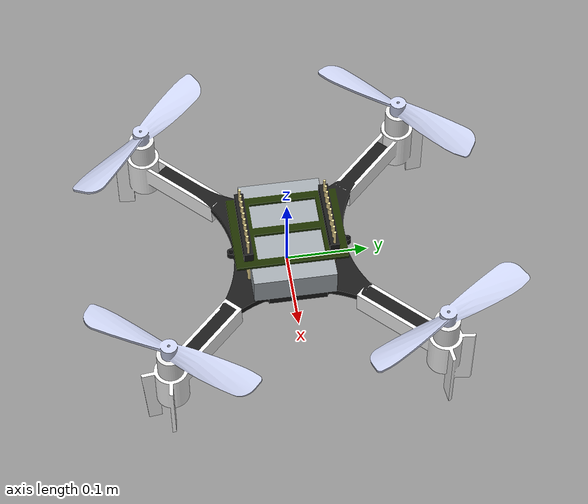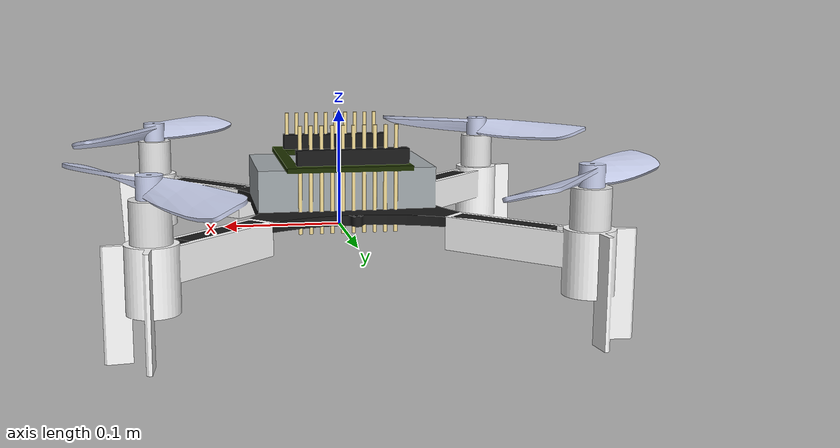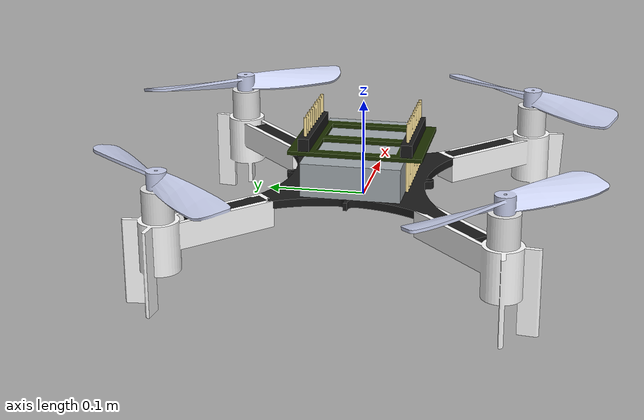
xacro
<?xml version="1.0"?>

<robot xmlns:xacro="http://www.ros.org/wiki/xacro" name="crazyflie2">

  <xacro:property name="rotor_drag_coefficient" value="1.8580e-05"/>
  <xacro:property name="moment_constant" value="0.005"/>

  <link name="base_link" />

  <link name="uav">
    <inertial>
      <mass value="0.027" />
      <origin xyz="0 0 0" />
      <!-- Refer to page 39 in http://groups.csail.mit.edu/robotics-center/public_papers/Landry15.pdf -->
      <inertia ixx="2.3951e-5" ixy="0.0" ixz="0.0" iyy="2.3951e-5" iyz="0.0" izz="3.2347e-5" />
      <!-- In Kg m^2 -->
    </inertial>

    <visual>
      <origin xyz="0 0 0" rpy="0 0 0" />
      <geometry>
        <mesh filename="package://crazyflie_description/meshes/crazyflie2.dae"/>
      </geometry>
    </visual>

    <!-- ToDo: insert collision model -->

  </link>

  <joint name="uav_link" type="fixed">
    <origin xyz="0 0 0" />
    <parent link="base_link"/>
    <child link="uav" />
  </joint>

</robot>
